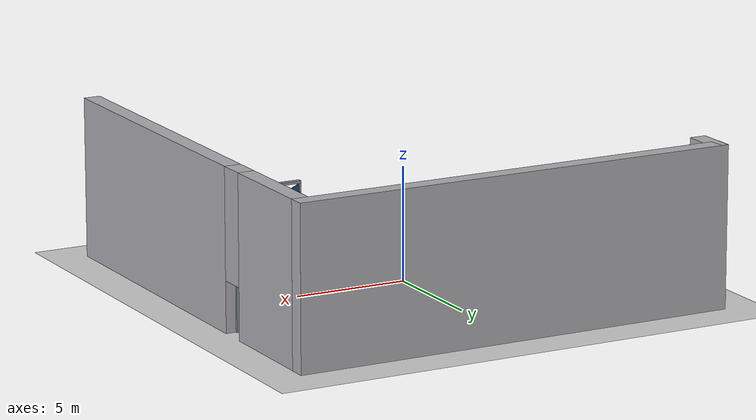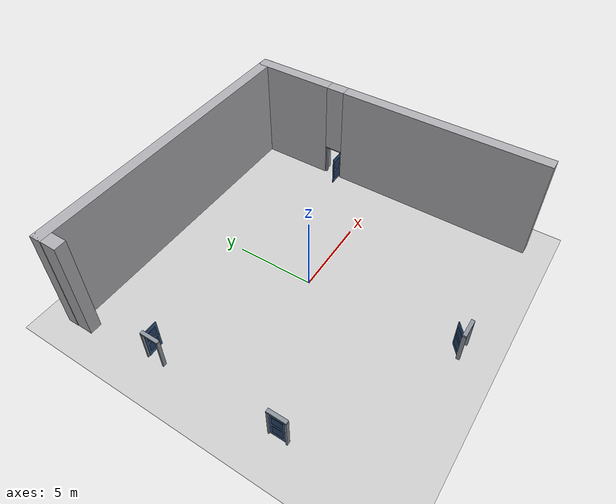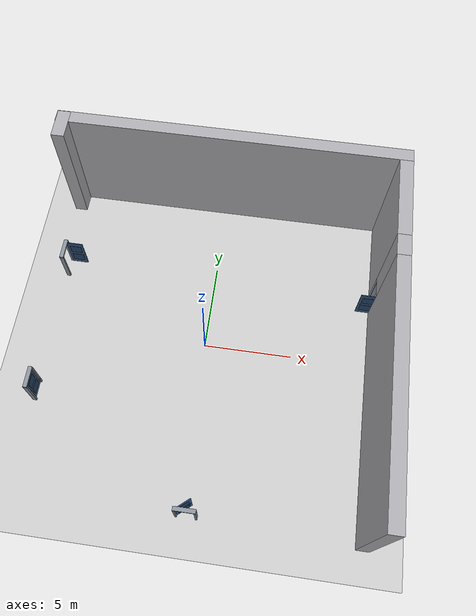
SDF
<sdf version="1.6">
 <world name="default">
  <plugin filename="gz-sim-physics-system" name="gz::sim::systems::Physics"/>
  <plugin filename="gz-sim-user-commands-system" name="gz::sim::systems::UserCommands"/>
  <plugin filename="gz-sim-scene-broadcaster-system" name="gz::sim::systems::SceneBroadcaster"/>
  <plugin filename="gz-sim-sensors-system" name="gz::sim::systems::Sensors">
   <render_engine>ogre2</render_engine>
  </plugin>
  <plugin filename="gz-sim-imu-system" name="gz::sim::systems::Imu"/>
  <light type="directional" name="sun">
   <pose>0 0 10 0 0 0</pose>
   <diffuse>0.8 0.8 0.8 1</diffuse>
   <specular>0.2 0.2 0.2 1</specular>
   <direction>-0.5 0.1 -0.9</direction>
  </light>
  <model name="ground_plane">
   <static>true</static>
   <link name="link">
    <collision name="collision"><geometry><plane><normal>0 0 1</normal></plane></geometry></collision>
    <visual name="visual">
     <geometry><plane><normal>0 0 1</normal><size>100 100</size></plane></geometry>
     <material><ambient>0.8 0.8 0.8 1</ambient><diffuse>0.8 0.8 0.8 1</diffuse></material>
    </visual>
   </link>
  </model>
  <model name="recinto">
   <static>true</static>
   <link name="link">
    <visual name="pared_norte_vis">
     <pose>0.18 9.635 3.48855 0 0 0</pose>
     <geometry><box><size>19.65 0.72902 6.97771</size></box></geometry>
     <material>
      <ambient>0.42 0.42 0.44 1</ambient>
      <diffuse>0.68 0.68 0.70 1</diffuse>
      <specular>0.10 0.10 0.10 1</specular>
      <pbr><metal><metalness>0.0</metalness><roughness>0.95</roughness></metal></pbr>
     </material>
    </visual>
    <collision name="pared_norte_col">
     <pose>0.18 9.635 3.48855 0 0 0</pose>
     <geometry><box><size>19.65 0.72902 6.97771</size></box></geometry>
    </collision>
    <visual name="pared_este_sur_vis">
     <pose>9.635 -3.31 3.48855 0 0 0</pose>
     <geometry><box><size>0.72902 13.42 6.97771</size></box></geometry>
     <material>
      <ambient>0.42 0.42 0.44 1</ambient>
      <diffuse>0.68 0.68 0.70 1</diffuse>
      <specular>0.10 0.10 0.10 1</specular>
      <pbr><metal><metalness>0.0</metalness><roughness>0.95</roughness></metal></pbr>
     </material>
    </visual>
    <collision name="pared_este_sur_col">
     <pose>9.635 -3.31 3.48855 0 0 0</pose>
     <geometry><box><size>0.72902 13.42 6.97771</size></box></geometry>
    </collision>
    <visual name="pared_este_norte_vis">
     <pose>9.635 7.295 3.48855 0 0 0</pose>
     <geometry><box><size>0.72902 5.39 6.97771</size></box></geometry>
     <material>
      <ambient>0.42 0.42 0.44 1</ambient>
      <diffuse>0.68 0.68 0.70 1</diffuse>
      <specular>0.10 0.10 0.10 1</specular>
      <pbr><metal><metalness>0.0</metalness><roughness>0.95</roughness></metal></pbr>
     </material>
    </visual>
    <collision name="pared_este_norte_col">
     <pose>9.635 7.295 3.48855 0 0 0</pose>
     <geometry><box><size>0.72902 5.39 6.97771</size></box></geometry>
    </collision>
    <visual name="pared_este_dintel_vis">
     <pose>9.635 4.0 4.599 0 0 0</pose>
     <geometry><box><size>0.72902 1.20 4.757</size></box></geometry>
     <material>
      <ambient>0.42 0.42 0.44 1</ambient>
      <diffuse>0.68 0.68 0.70 1</diffuse>
      <specular>0.10 0.10 0.10 1</specular>
      <pbr><metal><metalness>0.0</metalness><roughness>0.95</roughness></metal></pbr>
     </material>
    </visual>
    <collision name="pared_este_dintel_col">
     <pose>9.635 4.0 4.599 0 0 0</pose>
     <geometry><box><size>0.72902 1.20 4.757</size></box></geometry>
    </collision>
    <visual name="pared_oeste_relleno_vis">
     <pose>-9.25721 9.12 3.48855 0 0 0</pose>
     <geometry><box><size>0.72902 1.73 6.97771</size></box></geometry>
     <material>
      <ambient>0.42 0.42 0.44 1</ambient>
      <diffuse>0.68 0.68 0.70 1</diffuse>
      <specular>0.10 0.10 0.10 1</specular>
      <pbr><metal><metalness>0.0</metalness><roughness>0.95</roughness></metal></pbr>
     </material>
    </visual>
    <collision name="pared_oeste_relleno_col">
     <pose>-9.25721 9.12 3.48855 0 0 0</pose>
     <geometry><box><size>0.72902 1.73 6.97771</size></box></geometry>
    </collision>
   </link>
  </model>
  <include>
   <name>puerta_oeste_abierta</name>
   <uri>model://puerta_abierta</uri>
   <pose>-8.9 4.0 0 0 0 -1.5708</pose>
  </include>
  <include>
   <name>puerta_oeste_cerrada</name>
   <uri>model://puerta_cerrada</uri>
   <pose>-8.9 -4.0 0 0 0 -1.5708</pose>
  </include>
  <include>
   <name>puerta_sur_intermedia</name>
   <uri>model://puerta_intermedia</uri>
   <pose>0.5 -9.6 0 0 0 0</pose>
  </include>
  <include>
   <name>puerta_este_abierta</name>
   <uri>model://puerta_abierta</uri>
   <pose>9.45 4.0 0 0 0 1.5708</pose>
  </include>
 </world>
</sdf>

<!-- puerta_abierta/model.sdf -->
<sdf version="1.6">
  <model name="puerta_abierta">
    <static>true</static>

    <!-- ============ MARCO (jambas + dintel) ============ -->
    <link name="marco">
      <pose>0 0 0 0 0 0</pose>

      <visual name="jamba_izq_vis">
        <pose>-0.54 0 1.05 0 0 0</pose>
        <geometry><box><size>0.10 0.22 2.10</size></box></geometry>
        <material>
          <ambient>0.34 0.36 0.40 1</ambient>
          <diffuse>0.55 0.58 0.62 1</diffuse>
          <specular>0.45 0.45 0.45 1</specular>
          <pbr><metal><metalness>0.85</metalness><roughness>0.40</roughness></metal></pbr>
        </material>
      </visual>
      <collision name="jamba_izq_col">
        <pose>-0.54 0 1.05 0 0 0</pose>
        <geometry><box><size>0.10 0.22 2.10</size></box></geometry>
      </collision>

      <visual name="jamba_der_vis">
        <pose>0.54 0 1.05 0 0 0</pose>
        <geometry><box><size>0.10 0.22 2.10</size></box></geometry>
        <material>
          <ambient>0.34 0.36 0.40 1</ambient>
          <diffuse>0.55 0.58 0.62 1</diffuse>
          <specular>0.45 0.45 0.45 1</specular>
          <pbr><metal><metalness>0.85</metalness><roughness>0.40</roughness></metal></pbr>
        </material>
      </visual>
      <collision name="jamba_der_col">
        <pose>0.54 0 1.05 0 0 0</pose>
        <geometry><box><size>0.10 0.22 2.10</size></box></geometry>
      </collision>

      <visual name="dintel_vis">
        <pose>0 0 2.16 0 0 0</pose>
        <geometry><box><size>1.18 0.22 0.12</size></box></geometry>
        <material>
          <ambient>0.34 0.36 0.40 1</ambient>
          <diffuse>0.55 0.58 0.62 1</diffuse>
          <specular>0.45 0.45 0.45 1</specular>
          <pbr><metal><metalness>0.85</metalness><roughness>0.40</roughness></metal></pbr>
        </material>
      </visual>
      <collision name="dintel_col">
        <pose>0 0 2.16 0 0 0</pose>
        <geometry><box><size>1.18 0.22 0.12</size></box></geometry>
      </collision>

      <visual name="bisagra_inf">
        <pose>-0.50 0.11 0.45 0 0 0</pose>
        <geometry><cylinder><radius>0.025</radius><length>0.14</length></cylinder></geometry>
        <material>
          <ambient>0.05 0.05 0.06 1</ambient>
          <diffuse>0.12 0.12 0.14 1</diffuse>
          <specular>0.6 0.6 0.6 1</specular>
          <pbr><metal><metalness>0.95</metalness><roughness>0.25</roughness></metal></pbr>
        </material>
      </visual>
      <visual name="bisagra_sup">
        <pose>-0.50 0.11 1.65 0 0 0</pose>
        <geometry><cylinder><radius>0.025</radius><length>0.14</length></cylinder></geometry>
        <material>
          <ambient>0.05 0.05 0.06 1</ambient>
          <diffuse>0.12 0.12 0.14 1</diffuse>
          <specular>0.6 0.6 0.6 1</specular>
          <pbr><metal><metalness>0.95</metalness><roughness>0.25</roughness></metal></pbr>
        </material>
      </visual>
    </link>

    <!-- ============ HOJA (puerta) girada 90 grados ============ -->
    <link name="hoja">
      <pose>-0.5 0.48 0 0 0 1.5708</pose>

      <visual name="hoja_vis">
        <pose>0 0 1.02 0 0 0</pose>
        <geometry><box><size>0.94 0.05 2.04</size></box></geometry>
        <material>
          <ambient>0.10 0.16 0.24 1</ambient>
          <diffuse>0.20 0.34 0.50 1</diffuse>
          <specular>0.25 0.25 0.25 1</specular>
          <pbr><metal><metalness>0.55</metalness><roughness>0.55</roughness></metal></pbr>
        </material>
      </visual>
      <collision name="hoja_col">
        <pose>0 0 1.02 0 0 0</pose>
        <geometry><box><size>0.94 0.05 2.04</size></box></geometry>
      </collision>

      <visual name="panel_sup_a">
        <pose>0 0.028 1.45 0 0 0</pose>
        <geometry><box><size>0.66 0.012 0.62</size></box></geometry>
        <material>
          <ambient>0.07 0.12 0.18 1</ambient>
          <diffuse>0.15 0.26 0.40 1</diffuse>
          <specular>0.2 0.2 0.2 1</specular>
        </material>
      </visual>
      <visual name="panel_inf_a">
        <pose>0 0.028 0.60 0 0 0</pose>
        <geometry><box><size>0.66 0.012 0.62</size></box></geometry>
        <material>
          <ambient>0.07 0.12 0.18 1</ambient>
          <diffuse>0.15 0.26 0.40 1</diffuse>
          <specular>0.2 0.2 0.2 1</specular>
        </material>
      </visual>
      <visual name="panel_sup_b">
        <pose>0 -0.028 1.45 0 0 0</pose>
        <geometry><box><size>0.66 0.012 0.62</size></box></geometry>
        <material>
          <ambient>0.07 0.12 0.18 1</ambient>
          <diffuse>0.15 0.26 0.40 1</diffuse>
          <specular>0.2 0.2 0.2 1</specular>
        </material>
      </visual>
      <visual name="panel_inf_b">
        <pose>0 -0.028 0.60 0 0 0</pose>
        <geometry><box><size>0.66 0.012 0.62</size></box></geometry>
        <material>
          <ambient>0.07 0.12 0.18 1</ambient>
          <diffuse>0.15 0.26 0.40 1</diffuse>
          <specular>0.2 0.2 0.2 1</specular>
        </material>
      </visual>

      <visual name="manilla_roseta_a">
        <pose>0.38 0.04 1.02 1.5708 0 0</pose>
        <geometry><cylinder><radius>0.035</radius><length>0.02</length></cylinder></geometry>
        <material>
          <ambient>0.06 0.06 0.06 1</ambient>
          <diffuse>0.15 0.15 0.16 1</diffuse>
          <specular>0.7 0.7 0.7 1</specular>
          <pbr><metal><metalness>0.95</metalness><roughness>0.20</roughness></metal></pbr>
        </material>
      </visual>
      <visual name="manilla_palanca_a">
        <pose>0.32 0.07 1.02 0 0 0</pose>
        <geometry><box><size>0.12 0.025 0.025</size></box></geometry>
        <material>
          <ambient>0.06 0.06 0.06 1</ambient>
          <diffuse>0.15 0.15 0.16 1</diffuse>
          <specular>0.7 0.7 0.7 1</specular>
          <pbr><metal><metalness>0.95</metalness><roughness>0.20</roughness></metal></pbr>
        </material>
      </visual>
      <visual name="manilla_roseta_b">
        <pose>0.38 -0.04 1.02 1.5708 0 0</pose>
        <geometry><cylinder><radius>0.035</radius><length>0.02</length></cylinder></geometry>
        <material>
          <ambient>0.06 0.06 0.06 1</ambient>
          <diffuse>0.15 0.15 0.16 1</diffuse>
          <specular>0.7 0.7 0.7 1</specular>
          <pbr><metal><metalness>0.95</metalness><roughness>0.20</roughness></metal></pbr>
        </material>
      </visual>
      <visual name="manilla_palanca_b">
        <pose>0.32 -0.07 1.02 0 0 0</pose>
        <geometry><box><size>0.12 0.025 0.025</size></box></geometry>
        <material>
          <ambient>0.06 0.06 0.06 1</ambient>
          <diffuse>0.15 0.15 0.16 1</diffuse>
          <specular>0.7 0.7 0.7 1</specular>
          <pbr><metal><metalness>0.95</metalness><roughness>0.20</roughness></metal></pbr>
        </material>
      </visual>
    </link>
  </model>
</sdf>

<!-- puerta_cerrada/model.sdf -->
<sdf version="1.6">
  <model name="puerta_cerrada">
    <static>true</static>

    <!-- ============ MARCO (jambas + dintel) ============ -->
    <link name="marco">
      <pose>0 0 0 0 0 0</pose>

      <!-- Jamba izquierda -->
      <visual name="jamba_izq_vis">
        <pose>-0.54 0 1.05 0 0 0</pose>
        <geometry><box><size>0.10 0.22 2.10</size></box></geometry>
        <material>
          <ambient>0.34 0.36 0.40 1</ambient>
          <diffuse>0.55 0.58 0.62 1</diffuse>
          <specular>0.45 0.45 0.45 1</specular>
          <pbr><metal><metalness>0.85</metalness><roughness>0.40</roughness></metal></pbr>
        </material>
      </visual>
      <collision name="jamba_izq_col">
        <pose>-0.54 0 1.05 0 0 0</pose>
        <geometry><box><size>0.10 0.22 2.10</size></box></geometry>
      </collision>

      <!-- Jamba derecha -->
      <visual name="jamba_der_vis">
        <pose>0.54 0 1.05 0 0 0</pose>
        <geometry><box><size>0.10 0.22 2.10</size></box></geometry>
        <material>
          <ambient>0.34 0.36 0.40 1</ambient>
          <diffuse>0.55 0.58 0.62 1</diffuse>
          <specular>0.45 0.45 0.45 1</specular>
          <pbr><metal><metalness>0.85</metalness><roughness>0.40</roughness></metal></pbr>
        </material>
      </visual>
      <collision name="jamba_der_col">
        <pose>0.54 0 1.05 0 0 0</pose>
        <geometry><box><size>0.10 0.22 2.10</size></box></geometry>
      </collision>

      <!-- Dintel (parte superior) -->
      <visual name="dintel_vis">
        <pose>0 0 2.16 0 0 0</pose>
        <geometry><box><size>1.18 0.22 0.12</size></box></geometry>
        <material>
          <ambient>0.34 0.36 0.40 1</ambient>
          <diffuse>0.55 0.58 0.62 1</diffuse>
          <specular>0.45 0.45 0.45 1</specular>
          <pbr><metal><metalness>0.85</metalness><roughness>0.40</roughness></metal></pbr>
        </material>
      </visual>
      <collision name="dintel_col">
        <pose>0 0 2.16 0 0 0</pose>
        <geometry><box><size>1.18 0.22 0.12</size></box></geometry>
      </collision>

      <!-- Bisagras (lado izquierdo, eje x=-0.5) -->
      <visual name="bisagra_inf">
        <pose>-0.50 0.11 0.45 0 0 0</pose>
        <geometry><cylinder><radius>0.025</radius><length>0.14</length></cylinder></geometry>
        <material>
          <ambient>0.05 0.05 0.06 1</ambient>
          <diffuse>0.12 0.12 0.14 1</diffuse>
          <specular>0.6 0.6 0.6 1</specular>
          <pbr><metal><metalness>0.95</metalness><roughness>0.25</roughness></metal></pbr>
        </material>
      </visual>
      <visual name="bisagra_sup">
        <pose>-0.50 0.11 1.65 0 0 0</pose>
        <geometry><cylinder><radius>0.025</radius><length>0.14</length></cylinder></geometry>
        <material>
          <ambient>0.05 0.05 0.06 1</ambient>
          <diffuse>0.12 0.12 0.14 1</diffuse>
          <specular>0.6 0.6 0.6 1</specular>
          <pbr><metal><metalness>0.95</metalness><roughness>0.25</roughness></metal></pbr>
        </material>
      </visual>
    </link>

    <!-- ============ HOJA (puerta) ============ -->
    <!-- CERRADA: pose centro = (-0.02, 0), yaw = 0 -->
    <link name="hoja">
      <pose>-0.02 0 0 0 0 0</pose>

      <!-- Cuerpo principal de la hoja -->
      <visual name="hoja_vis">
        <pose>0 0 1.02 0 0 0</pose>
        <geometry><box><size>0.94 0.05 2.04</size></box></geometry>
        <material>
          <ambient>0.10 0.16 0.24 1</ambient>
          <diffuse>0.20 0.34 0.50 1</diffuse>
          <specular>0.25 0.25 0.25 1</specular>
          <pbr><metal><metalness>0.55</metalness><roughness>0.55</roughness></metal></pbr>
        </material>
      </visual>
      <collision name="hoja_col">
        <pose>0 0 1.02 0 0 0</pose>
        <geometry><box><size>0.94 0.05 2.04</size></box></geometry>
      </collision>

      <!-- Panel decorativo superior (relieve, cara +Y) -->
      <visual name="panel_sup_a">
        <pose>0 0.028 1.45 0 0 0</pose>
        <geometry><box><size>0.66 0.012 0.62</size></box></geometry>
        <material>
          <ambient>0.07 0.12 0.18 1</ambient>
          <diffuse>0.15 0.26 0.40 1</diffuse>
          <specular>0.2 0.2 0.2 1</specular>
        </material>
      </visual>
      <!-- Panel decorativo inferior (relieve, cara +Y) -->
      <visual name="panel_inf_a">
        <pose>0 0.028 0.60 0 0 0</pose>
        <geometry><box><size>0.66 0.012 0.62</size></box></geometry>
        <material>
          <ambient>0.07 0.12 0.18 1</ambient>
          <diffuse>0.15 0.26 0.40 1</diffuse>
          <specular>0.2 0.2 0.2 1</specular>
        </material>
      </visual>
      <!-- Panel decorativo superior (relieve, cara -Y) -->
      <visual name="panel_sup_b">
        <pose>0 -0.028 1.45 0 0 0</pose>
        <geometry><box><size>0.66 0.012 0.62</size></box></geometry>
        <material>
          <ambient>0.07 0.12 0.18 1</ambient>
          <diffuse>0.15 0.26 0.40 1</diffuse>
          <specular>0.2 0.2 0.2 1</specular>
        </material>
      </visual>
      <!-- Panel decorativo inferior (relieve, cara -Y) -->
      <visual name="panel_inf_b">
        <pose>0 -0.028 0.60 0 0 0</pose>
        <geometry><box><size>0.66 0.012 0.62</size></box></geometry>
        <material>
          <ambient>0.07 0.12 0.18 1</ambient>
          <diffuse>0.15 0.26 0.40 1</diffuse>
          <specular>0.2 0.2 0.2 1</specular>
        </material>
      </visual>

      <!-- Manilla tipo palanca (lado opuesto a bisagra, x≈+0.38) cara +Y -->
      <visual name="manilla_roseta_a">
        <pose>0.38 0.04 1.02 1.5708 0 0</pose>
        <geometry><cylinder><radius>0.035</radius><length>0.02</length></cylinder></geometry>
        <material>
          <ambient>0.06 0.06 0.06 1</ambient>
          <diffuse>0.15 0.15 0.16 1</diffuse>
          <specular>0.7 0.7 0.7 1</specular>
          <pbr><metal><metalness>0.95</metalness><roughness>0.20</roughness></metal></pbr>
        </material>
      </visual>
      <visual name="manilla_palanca_a">
        <pose>0.32 0.07 1.02 0 0 0</pose>
        <geometry><box><size>0.12 0.025 0.025</size></box></geometry>
        <material>
          <ambient>0.06 0.06 0.06 1</ambient>
          <diffuse>0.15 0.15 0.16 1</diffuse>
          <specular>0.7 0.7 0.7 1</specular>
          <pbr><metal><metalness>0.95</metalness><roughness>0.20</roughness></metal></pbr>
        </material>
      </visual>
      <!-- Manilla cara -Y -->
      <visual name="manilla_roseta_b">
        <pose>0.38 -0.04 1.02 1.5708 0 0</pose>
        <geometry><cylinder><radius>0.035</radius><length>0.02</length></cylinder></geometry>
        <material>
          <ambient>0.06 0.06 0.06 1</ambient>
          <diffuse>0.15 0.15 0.16 1</diffuse>
          <specular>0.7 0.7 0.7 1</specular>
          <pbr><metal><metalness>0.95</metalness><roughness>0.20</roughness></metal></pbr>
        </material>
      </visual>
      <visual name="manilla_palanca_b">
        <pose>0.32 -0.07 1.02 0 0 0</pose>
        <geometry><box><size>0.12 0.025 0.025</size></box></geometry>
        <material>
          <ambient>0.06 0.06 0.06 1</ambient>
          <diffuse>0.15 0.15 0.16 1</diffuse>
          <specular>0.7 0.7 0.7 1</specular>
          <pbr><metal><metalness>0.95</metalness><roughness>0.20</roughness></metal></pbr>
        </material>
      </visual>
    </link>
  </model>
</sdf>

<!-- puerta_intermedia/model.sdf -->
<sdf version="1.6">
  <model name="puerta_intermedia">
    <static>true</static>

    <!-- ============ MARCO (jambas + dintel) ============ -->
    <link name="marco">
      <pose>0 0 0 0 0 0</pose>

      <visual name="jamba_izq_vis">
        <pose>-0.54 0 1.05 0 0 0</pose>
        <geometry><box><size>0.10 0.22 2.10</size></box></geometry>
        <material>
          <ambient>0.34 0.36 0.40 1</ambient>
          <diffuse>0.55 0.58 0.62 1</diffuse>
          <specular>0.45 0.45 0.45 1</specular>
          <pbr><metal><metalness>0.85</metalness><roughness>0.40</roughness></metal></pbr>
        </material>
      </visual>
      <collision name="jamba_izq_col">
        <pose>-0.54 0 1.05 0 0 0</pose>
        <geometry><box><size>0.10 0.22 2.10</size></box></geometry>
      </collision>

      <visual name="jamba_der_vis">
        <pose>0.54 0 1.05 0 0 0</pose>
        <geometry><box><size>0.10 0.22 2.10</size></box></geometry>
        <material>
          <ambient>0.34 0.36 0.40 1</ambient>
          <diffuse>0.55 0.58 0.62 1</diffuse>
          <specular>0.45 0.45 0.45 1</specular>
          <pbr><metal><metalness>0.85</metalness><roughness>0.40</roughness></metal></pbr>
        </material>
      </visual>
      <collision name="jamba_der_col">
        <pose>0.54 0 1.05 0 0 0</pose>
        <geometry><box><size>0.10 0.22 2.10</size></box></geometry>
      </collision>

      <visual name="dintel_vis">
        <pose>0 0 2.16 0 0 0</pose>
        <geometry><box><size>1.18 0.22 0.12</size></box></geometry>
        <material>
          <ambient>0.34 0.36 0.40 1</ambient>
          <diffuse>0.55 0.58 0.62 1</diffuse>
          <specular>0.45 0.45 0.45 1</specular>
          <pbr><metal><metalness>0.85</metalness><roughness>0.40</roughness></metal></pbr>
        </material>
      </visual>
      <collision name="dintel_col">
        <pose>0 0 2.16 0 0 0</pose>
        <geometry><box><size>1.18 0.22 0.12</size></box></geometry>
      </collision>

      <visual name="bisagra_inf">
        <pose>-0.50 0.11 0.45 0 0 0</pose>
        <geometry><cylinder><radius>0.025</radius><length>0.14</length></cylinder></geometry>
        <material>
          <ambient>0.05 0.05 0.06 1</ambient>
          <diffuse>0.12 0.12 0.14 1</diffuse>
          <specular>0.6 0.6 0.6 1</specular>
          <pbr><metal><metalness>0.95</metalness><roughness>0.25</roughness></metal></pbr>
        </material>
      </visual>
      <visual name="bisagra_sup">
        <pose>-0.50 0.11 1.65 0 0 0</pose>
        <geometry><cylinder><radius>0.025</radius><length>0.14</length></cylinder></geometry>
        <material>
          <ambient>0.05 0.05 0.06 1</ambient>
          <diffuse>0.12 0.12 0.14 1</diffuse>
          <specular>0.6 0.6 0.6 1</specular>
          <pbr><metal><metalness>0.95</metalness><roughness>0.25</roughness></metal></pbr>
        </material>
      </visual>
    </link>

    <!-- ============ HOJA (puerta) entreabierta ~40 grados ============ -->
    <link name="hoja">
      <pose>-0.132 0.309 0 0 0 0.6981</pose>

      <visual name="hoja_vis">
        <pose>0 0 1.02 0 0 0</pose>
        <geometry><box><size>0.94 0.05 2.04</size></box></geometry>
        <material>
          <ambient>0.10 0.16 0.24 1</ambient>
          <diffuse>0.20 0.34 0.50 1</diffuse>
          <specular>0.25 0.25 0.25 1</specular>
          <pbr><metal><metalness>0.55</metalness><roughness>0.55</roughness></metal></pbr>
        </material>
      </visual>
      <collision name="hoja_col">
        <pose>0 0 1.02 0 0 0</pose>
        <geometry><box><size>0.94 0.05 2.04</size></box></geometry>
      </collision>

      <visual name="panel_sup_a">
        <pose>0 0.028 1.45 0 0 0</pose>
        <geometry><box><size>0.66 0.012 0.62</size></box></geometry>
        <material>
          <ambient>0.07 0.12 0.18 1</ambient>
          <diffuse>0.15 0.26 0.40 1</diffuse>
          <specular>0.2 0.2 0.2 1</specular>
        </material>
      </visual>
      <visual name="panel_inf_a">
        <pose>0 0.028 0.60 0 0 0</pose>
        <geometry><box><size>0.66 0.012 0.62</size></box></geometry>
        <material>
          <ambient>0.07 0.12 0.18 1</ambient>
          <diffuse>0.15 0.26 0.40 1</diffuse>
          <specular>0.2 0.2 0.2 1</specular>
        </material>
      </visual>
      <visual name="panel_sup_b">
        <pose>0 -0.028 1.45 0 0 0</pose>
        <geometry><box><size>0.66 0.012 0.62</size></box></geometry>
        <material>
          <ambient>0.07 0.12 0.18 1</ambient>
          <diffuse>0.15 0.26 0.40 1</diffuse>
          <specular>0.2 0.2 0.2 1</specular>
        </material>
      </visual>
      <visual name="panel_inf_b">
        <pose>0 -0.028 0.60 0 0 0</pose>
        <geometry><box><size>0.66 0.012 0.62</size></box></geometry>
        <material>
          <ambient>0.07 0.12 0.18 1</ambient>
          <diffuse>0.15 0.26 0.40 1</diffuse>
          <specular>0.2 0.2 0.2 1</specular>
        </material>
      </visual>

      <visual name="manilla_roseta_a">
        <pose>0.38 0.04 1.02 1.5708 0 0</pose>
        <geometry><cylinder><radius>0.035</radius><length>0.02</length></cylinder></geometry>
        <material>
          <ambient>0.06 0.06 0.06 1</ambient>
          <diffuse>0.15 0.15 0.16 1</diffuse>
          <specular>0.7 0.7 0.7 1</specular>
          <pbr><metal><metalness>0.95</metalness><roughness>0.20</roughness></metal></pbr>
        </material>
      </visual>
      <visual name="manilla_palanca_a">
        <pose>0.32 0.07 1.02 0 0 0</pose>
        <geometry><box><size>0.12 0.025 0.025</size></box></geometry>
        <material>
          <ambient>0.06 0.06 0.06 1</ambient>
          <diffuse>0.15 0.15 0.16 1</diffuse>
          <specular>0.7 0.7 0.7 1</specular>
          <pbr><metal><metalness>0.95</metalness><roughness>0.20</roughness></metal></pbr>
        </material>
      </visual>
      <visual name="manilla_roseta_b">
        <pose>0.38 -0.04 1.02 1.5708 0 0</pose>
        <geometry><cylinder><radius>0.035</radius><length>0.02</length></cylinder></geometry>
        <material>
          <ambient>0.06 0.06 0.06 1</ambient>
          <diffuse>0.15 0.15 0.16 1</diffuse>
          <specular>0.7 0.7 0.7 1</specular>
          <pbr><metal><metalness>0.95</metalness><roughness>0.20</roughness></metal></pbr>
        </material>
      </visual>
      <visual name="manilla_palanca_b">
        <pose>0.32 -0.07 1.02 0 0 0</pose>
        <geometry><box><size>0.12 0.025 0.025</size></box></geometry>
        <material>
          <ambient>0.06 0.06 0.06 1</ambient>
          <diffuse>0.15 0.15 0.16 1</diffuse>
          <specular>0.7 0.7 0.7 1</specular>
          <pbr><metal><metalness>0.95</metalness><roughness>0.20</roughness></metal></pbr>
        </material>
      </visual>
    </link>
  </model>
</sdf>
